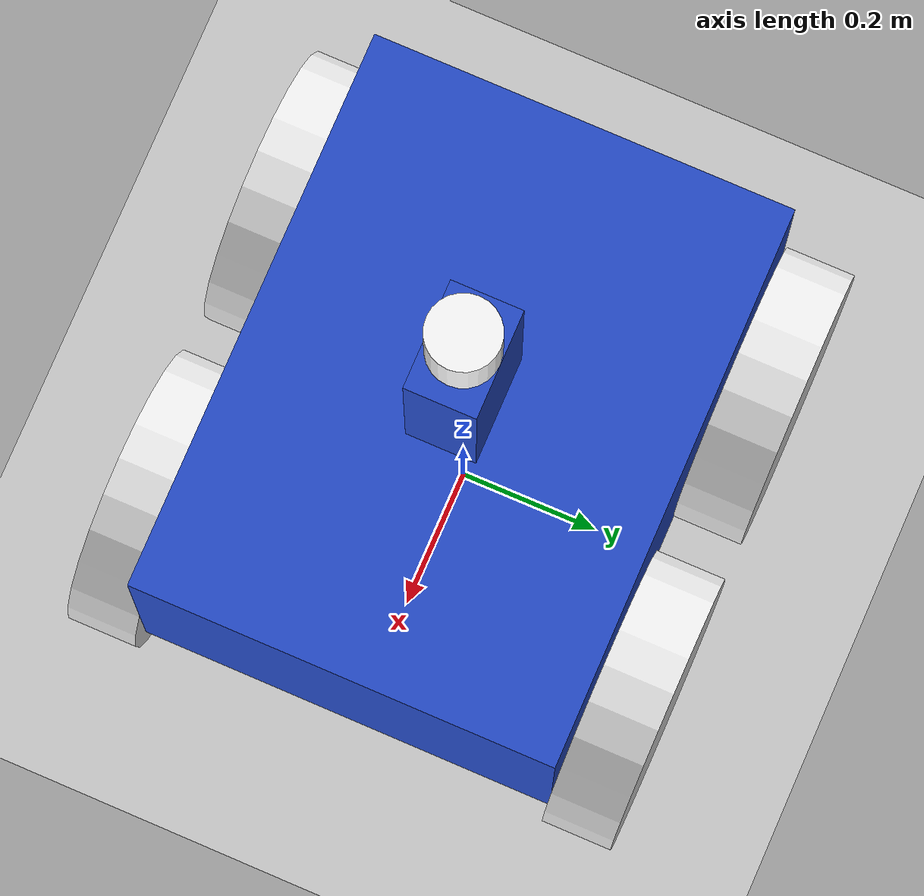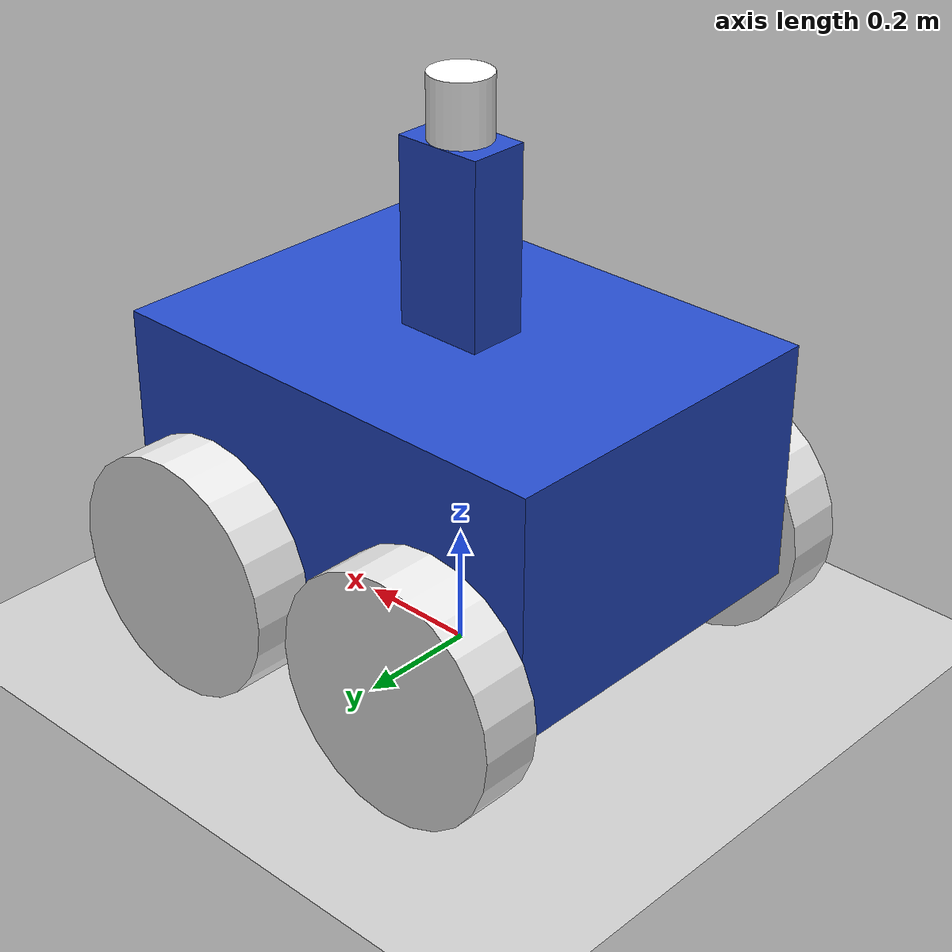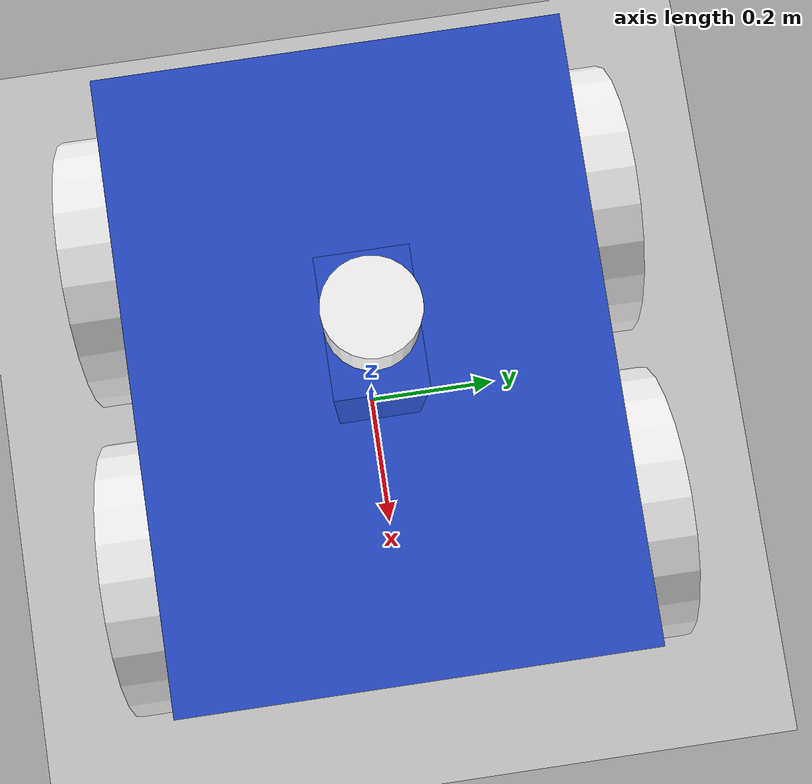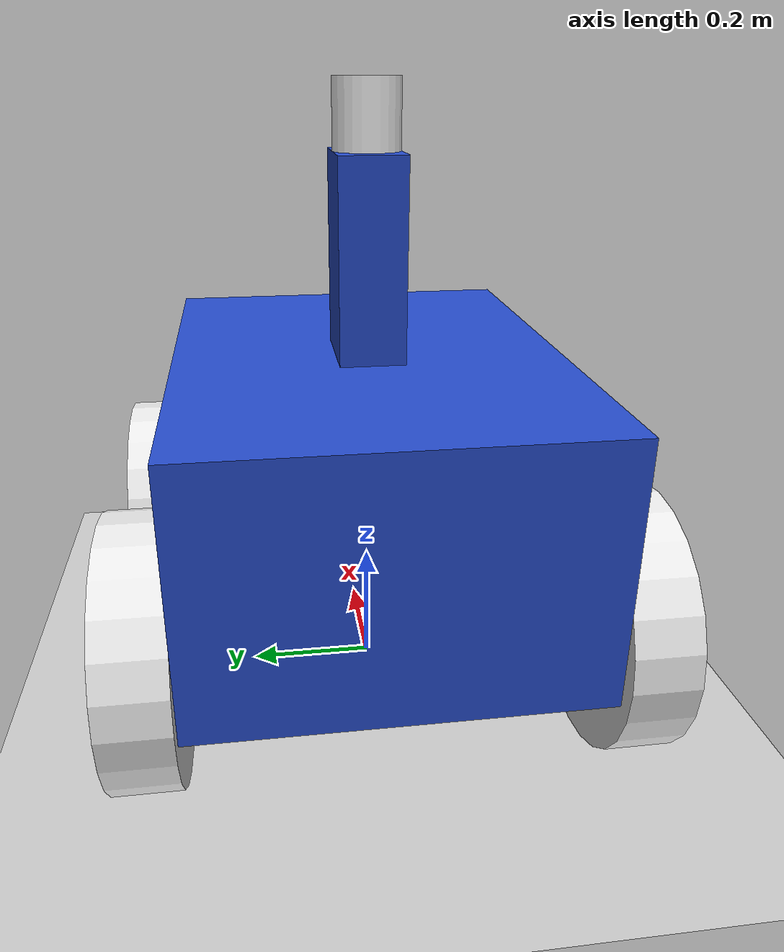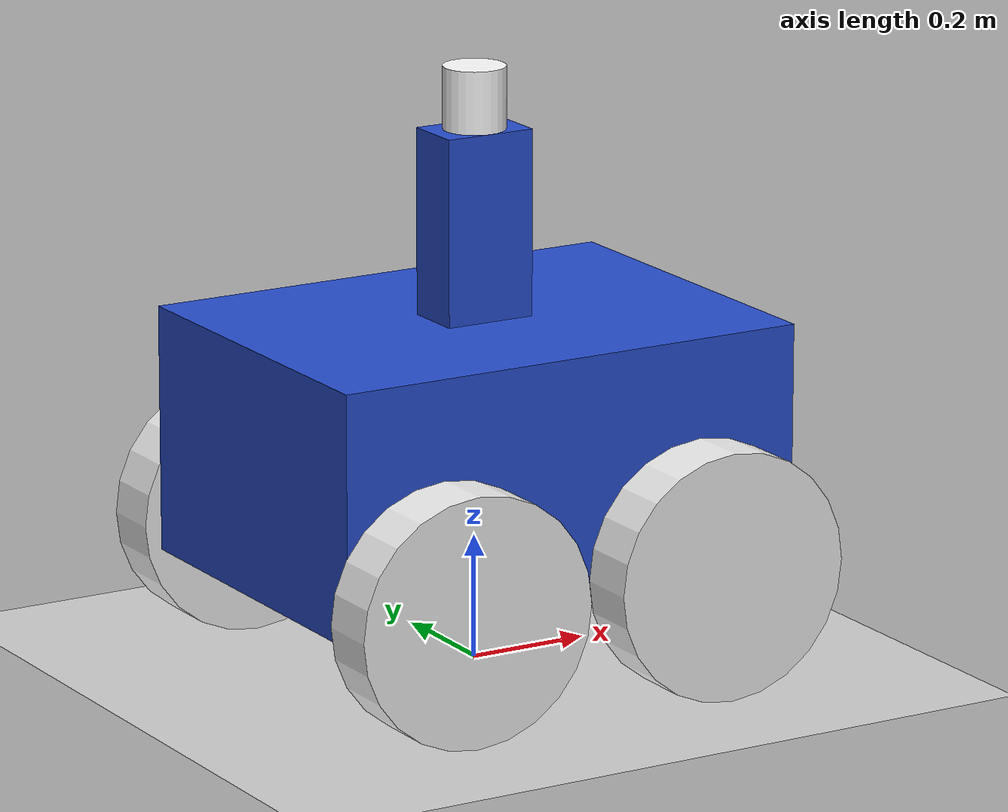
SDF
<sdf version='1.10'>
  <world name='rover'>
    <physics name='1ms' type='ode'>
      <max_step_size>0.001</max_step_size>
      <real_time_factor>1</real_time_factor>
      <real_time_update_rate>1000</real_time_update_rate>
      <solver>
        <type>quickstep</type>
        <iters>100</iters>
      </solver>
    </physics>
    <plugin name='gz::sim::systems::Physics' filename='gz-sim-physics-system'/>
    <plugin name='gz::sim::systems::UserCommands' filename='gz-sim-user-commands-system'/>
    <plugin name='gz::sim::systems::SceneBroadcaster' filename='gz-sim-scene-broadcaster-system'/>
    <plugin name='gz::sim::systems::Contact' filename='gz-sim-contact-system'/>
    <gravity>0 0 -9.8000000000000007</gravity>
    <magnetic_field>5.5644999999999998e-06 2.2875799999999999e-05 -4.2388400000000002e-05</magnetic_field>
    <atmosphere type='adiabatic'/>
    <scene>
      <ambient>0.400000006 0.400000006 0.400000006 1</ambient>
      <background>0.699999988 0.699999988 0.699999988 1</background>
      <shadows>true</shadows>
    </scene>
    <model name='ground_plane'>
      <static>true</static>
      <link name='link'>
        <collision name='collision'>
          <geometry>
            <plane>
              <normal>0 0 1</normal>
              <size>100 100</size>
            </plane>
          </geometry>
          <surface>
            <friction>
              <ode>
                <mu>1.0</mu>  <!-- Forward friction -->
                <mu2>1.0</mu2>  <!-- Lateral friction -->
              </ode>
            </friction>
            <bounce/>
            <contact/>
          </surface>
        </collision>
        <visual name='visual'>
          <geometry>
            <plane>
              <normal>0 0 1</normal>
              <size>100 100</size>
            </plane>
          </geometry>
          <material>
            <ambient>0.800000012 0.800000012 0.800000012 1</ambient>
            <diffuse>0.800000012 0.800000012 0.800000012 1</diffuse>
            <specular>0.800000012 0.800000012 0.800000012 1</specular>
          </material>
        </visual>
        <pose>0 0 0 0 0 0</pose>
        <enable_wind>false</enable_wind>
      </link>
      <pose>0 0 0 0 0 0</pose>
      <self_collide>false</self_collide>
    </model>
    <light name='sun' type='directional'>
      <pose>0 0 10 0 0 0</pose>
      <cast_shadows>true</cast_shadows>
      <intensity>1</intensity>
      <direction>-0.5 0.10000000000000001 -0.90000000000000002</direction>
      <diffuse>0.800000012 0.800000012 0.800000012 1</diffuse>
      <specular>0.200000003 0.200000003 0.200000003 1</specular>
      <attenuation>
        <range>1000</range>
        <linear>0.01</linear>
        <constant>0.90000000000000002</constant>
        <quadratic>0.001</quadratic>
      </attenuation>
      <spot>
        <inner_angle>0</inner_angle>
        <outer_angle>0</outer_angle>
        <falloff>0</falloff>
      </spot>
    </light>

    <model name='rover'>
      <link name='base_link'>
        <inertial>
          <pose>0 0 0.42569558101472998 0 0 0</pose>
          <mass>6.1099999999999994</mass>
          <inertia>
            <ixx>0.47053996044735391</ixx>
            <ixy>0</ixy>
            <ixz>0</ixz>
            <iyy>0.35283162711402061</iyy>
            <iyz>0</iyz>
            <izz>0.41950999999999999</izz>
          </inertia>
        </inertial>
        <collision name='base_link_collision'>
          <pose>0 0 0.35999999999999999 0 0 0</pose>
          <geometry>
            <box>
              <size>0.80000000000000004 0.59999999999999998 0.40000000000000002</size>
            </box>
          </geometry>
          <surface>
            <contact>
              <ode/>
            </contact>
            <friction>
              <ode>
                <mu>0.20000000000000001</mu>
                <mu2>0.20000000000000001</mu2>
              </ode>
            </friction>
          </surface>
        </collision>
        <collision name='base_link_fixed_joint_lump__stand_link_collision_1'>
          <pose>0 0 0.71000000000000008 0 0 0</pose>
          <geometry>
            <box>
              <size>0.14999999999999999 0.10000000000000001 0.29999999999999999</size>
            </box>
          </geometry>
          <surface>
            <contact>
              <ode/>
            </contact>
            <friction>
              <ode>
                <mu>0.20000000000000001</mu>
                <mu2>0.20000000000000001</mu2>
              </ode>
            </friction>
          </surface>
        </collision>
        <collision name='base_link_fixed_joint_lump__lidar_link_collision_2'>
          <pose>0 0 0.91000000000000014 0 0 0</pose>
          <geometry>
            <cylinder>
              <length>0.10000000000000001</length>
              <radius>0.050000000000000003</radius>
            </cylinder>
          </geometry>
          <surface>
            <contact>
              <ode/>
            </contact>
            <friction>
              <ode/>
            </friction>
          </surface>
        </collision>
        <visual name='base_link_visual'>
          <pose>0 0 0.35999999999999999 0 0 0</pose>
          <geometry>
            <box>
              <size>0.80000000000000004 0.59999999999999998 0.40000000000000002</size>
            </box>
          </geometry>
          <material>
            <script>
              <name>Gazebo/Blue</name>
              <uri>file://media/materials/scripts/gazebo.material</uri>
            </script>
            <diffuse>1 0.949999988 0.949999988 1</diffuse>
            <ambient>1 0.949999988 0.949999988 1</ambient>
          </material>
        </visual>
        <visual name='base_link_fixed_joint_lump__stand_link_visual_1'>
          <pose>0 0 0.71000000000000008 0 0 0</pose>
          <geometry>
            <box>
              <size>0.14999999999999999 0.10000000000000001 0.29999999999999999</size>
            </box>
          </geometry>
          <material>
            <script>
              <name>Gazebo/Blue</name>
              <uri>file://media/materials/scripts/gazebo.material</uri>
            </script>
            <diffuse>1 0.949999988 0.949999988 1</diffuse>
            <ambient>1 0.949999988 0.949999988 1</ambient>
          </material>
        </visual>
        <visual name='base_link_fixed_joint_lump__lidar_link_visual_2'>
          <pose>0 0 0.91000000000000014 0 0 0</pose>
          <geometry>
            <cylinder>
              <length>0.10000000000000001</length>
              <radius>0.050000000000000003</radius>
            </cylinder>
          </geometry>
          <material>
            <diffuse>1 1 1 1</diffuse>
            <ambient>1 1 1 1</ambient>
          </material>
        </visual>
        <sensor name='imu' type='imu'>
          <always_on>true</always_on>
          <update_rate>100</update_rate>
          <visualize>true</visualize>
          <topic>imu</topic>
          <pose>0 0 0 0 0 0</pose>
        </sensor>
        <sensor name='lidar' type='gpu_lidar'>
          <topic>cloud</topic>
          <update_rate>10</update_rate>
          <lidar>
            <scan>
              <horizontal>
                <samples>720</samples>
                <min_angle>-3.141592653</min_angle>
                <max_angle>3.141592653</max_angle>
                <resolution>1</resolution>
              </horizontal>
              <vertical>
                <samples>64</samples>
                <min_angle>-0.60999999999999999</min_angle>
                <max_angle>-0.001</max_angle>
              </vertical>
            </scan>
            <range>
              <min>0.29999999999999999</min>
              <max>8</max>
              <resolution>0.01</resolution>
              <noise>
                <type>gaussian</type>
                <mean>0.0</mean>
                <stddev>0.02</stddev>
              </noise>
            </range>
          </lidar>
          <always_on>true</always_on>
          <visualize>true</visualize>
          <pose>0 0 0.91000000000000003 0 0 0</pose>
          <gz_frame_id>lidar_link</gz_frame_id>
        </sensor>
      </link>
      <joint name='wheel_bl_joint' type='revolute'>
        <pose relative_to='base_link'>-0.22857142857142859 0.34999999999999998 0.20000000000000001 0 0 0</pose>
        <parent>base_link</parent>
        <child>wheel_bl_link</child>
        <axis>
          <xyz>0 1 0</xyz>
          <limit>
            <effort>2000</effort>
            <velocity>1</velocity>
            <lower>-inf</lower>
            <upper>inf</upper>
          </limit>
          <dynamics>
            <spring_reference>0</spring_reference>
            <spring_stiffness>0</spring_stiffness>
          </dynamics>
        </axis>
      </joint>
      <link name='wheel_bl_link'>
        <pose relative_to='wheel_bl_joint'>0 0 0 0 0 0</pose>
        <inertial>
          <pose>0 0 0 1.5707963267948959 0 0</pose>
          <mass>1.2</mass>
          <inertia>
            <ixx>0.012999999999999999</ixx>
            <ixy>0</ixy>
            <ixz>0</ixz>
            <iyy>0.012999999999999999</iyy>
            <iyz>0</iyz>
            <izz>0.024</izz>
          </inertia>
        </inertial>
        <collision name='wheel_bl_link_collision'>
          <pose>0 0 0 1.5707963267948959 0 0</pose>
          <geometry>
            <cylinder>
              <length>0.10000000000000001</length>
              <radius>0.20000000000000001</radius>
            </cylinder>
          </geometry>
          <surface>
            <contact>
              <ode/>
            </contact>
            <friction>
              <ode>
                <mu>1</mu>
                <mu2>0.20000000000000001</mu2>
                <fdir1>1 0 0</fdir1>
              </ode>
            </friction>
          </surface>
        </collision>
        <visual name='wheel_bl_link_visual'>
          <pose>0 0 0 1.5707963267948959 0 0</pose>
          <geometry>
            <cylinder>
              <length>0.10000000000000001</length>
              <radius>0.20000000000000001</radius>
            </cylinder>
          </geometry>
          <material>
            <script>
              <name>Gazebo/White</name>
              <uri>file://media/materials/scripts/gazebo.material</uri>
            </script>
            <diffuse>0.625 0.625 0.625 1</diffuse>
            <ambient>0.625 0.625 0.625 1</ambient>
          </material>
        </visual>
      </link>
      <joint name='wheel_br_joint' type='revolute'>
        <pose relative_to='base_link'>-0.22857142857142859 -0.34999999999999998 0.20000000000000001 0 0 0</pose>
        <parent>base_link</parent>
        <child>wheel_br_link</child>
        <axis>
          <xyz>0 1 0</xyz>
          <limit>
            <effort>2000</effort>
            <velocity>1</velocity>
            <lower>-inf</lower>
            <upper>inf</upper>
          </limit>
          <dynamics>
            <spring_reference>0</spring_reference>
            <spring_stiffness>0</spring_stiffness>
          </dynamics>
        </axis>
      </joint>
      <link name='wheel_br_link'>
        <pose relative_to='wheel_br_joint'>0 0 0 0 0 0</pose>
        <inertial>
          <pose>0 0 0 1.5707963267948959 0 0</pose>
          <mass>1.2</mass>
          <inertia>
            <ixx>0.012999999999999999</ixx>
            <ixy>0</ixy>
            <ixz>0</ixz>
            <iyy>0.012999999999999999</iyy>
            <iyz>0</iyz>
            <izz>0.024</izz>
          </inertia>
        </inertial>
        <collision name='wheel_br_link_collision'>
          <pose>0 0 0 1.5707963267948959 0 0</pose>
          <geometry>
            <cylinder>
              <length>0.10000000000000001</length>
              <radius>0.20000000000000001</radius>
            </cylinder>
          </geometry>
          <surface>
            <contact>
              <ode/>
            </contact>
            <friction>
              <ode>
                <mu>1</mu>
                <mu2>0.20000000000000001</mu2>
                <fdir1>1 0 0</fdir1>
              </ode>
            </friction>
          </surface>
        </collision>
        <visual name='wheel_br_link_visual'>
          <pose>0 0 0 1.5707963267948959 0 0</pose>
          <geometry>
            <cylinder>
              <length>0.10000000000000001</length>
              <radius>0.20000000000000001</radius>
            </cylinder>
          </geometry>
          <material>
            <script>
              <name>Gazebo/White</name>
              <uri>file://media/materials/scripts/gazebo.material</uri>
            </script>
            <diffuse>0.625 0.625 0.625 1</diffuse>
            <ambient>0.625 0.625 0.625 1</ambient>
          </material>
        </visual>
      </link>
      <joint name='wheel_fl_joint' type='revolute'>
        <pose relative_to='base_link'>0.22857142857142859 0.34999999999999998 0.20000000000000001 0 0 0</pose>
        <parent>base_link</parent>
        <child>wheel_fl_link</child>
        <axis>
          <xyz>0 1 0</xyz>
          <limit>
            <effort>2000</effort>
            <velocity>1</velocity>
            <lower>-inf</lower>
            <upper>inf</upper>
          </limit>
          <dynamics>
            <spring_reference>0</spring_reference>
            <spring_stiffness>0</spring_stiffness>
          </dynamics>
        </axis>
      </joint>
      <link name='wheel_fl_link'>
        <pose relative_to='wheel_fl_joint'>0 0 0 0 0 0</pose>
        <inertial>
          <pose>0 0 0 1.5707963267948959 0 0</pose>
          <mass>1.2</mass>
          <inertia>
            <ixx>0.012999999999999999</ixx>
            <ixy>0</ixy>
            <ixz>0</ixz>
            <iyy>0.012999999999999999</iyy>
            <iyz>0</iyz>
            <izz>0.024</izz>
          </inertia>
        </inertial>
        <collision name='wheel_fl_link_collision'>
          <pose>0 0 0 1.5707963267948959 0 0</pose>
          <geometry>
            <cylinder>
              <length>0.10000000000000001</length>
              <radius>0.20000000000000001</radius>
            </cylinder>
          </geometry>
          <surface>
            <contact>
              <ode/>
            </contact>
            <friction>
              <ode>
                <mu>1</mu>
                <mu2>0.20000000000000001</mu2>
                <fdir1>1 0 0</fdir1>
              </ode>
            </friction>
          </surface>
        </collision>
        <visual name='wheel_fl_link_visual'>
          <pose>0 0 0 1.5707963267948959 0 0</pose>
          <geometry>
            <cylinder>
              <length>0.10000000000000001</length>
              <radius>0.20000000000000001</radius>
            </cylinder>
          </geometry>
          <material>
            <script>
              <name>Gazebo/White</name>
              <uri>file://media/materials/scripts/gazebo.material</uri>
            </script>
            <diffuse>0.625 0.625 0.625 1</diffuse>
            <ambient>0.625 0.625 0.625 1</ambient>
          </material>
        </visual>
      </link>
      <joint name='wheel_fr_joint' type='revolute'>
        <pose relative_to='base_link'>0.22857142857142859 -0.34999999999999998 0.20000000000000001 0 0 0</pose>
        <parent>base_link</parent>
        <child>wheel_fr_link</child>
        <axis>
          <xyz>0 1 0</xyz>
          <limit>
            <effort>2000</effort>
            <velocity>1</velocity>
            <lower>-inf</lower>
            <upper>inf</upper>
          </limit>
          <dynamics>
            <spring_reference>0</spring_reference>
            <spring_stiffness>0</spring_stiffness>
          </dynamics>
        </axis>
      </joint>
      <link name='wheel_fr_link'>
        <pose relative_to='wheel_fr_joint'>0 0 0 0 0 0</pose>
        <inertial>
          <pose>0 0 0 1.5707963267948959 0 0</pose>
          <mass>1.2</mass>
          <inertia>
            <ixx>0.012999999999999999</ixx>
            <ixy>0</ixy>
            <ixz>0</ixz>
            <iyy>0.012999999999999999</iyy>
            <iyz>0</iyz>
            <izz>0.024</izz>
          </inertia>
        </inertial>
        <collision name='wheel_fr_link_collision'>
          <pose>0 0 0 1.5707963267948959 0 0</pose>
          <geometry>
            <cylinder>
              <length>0.10000000000000001</length>
              <radius>0.20000000000000001</radius>
            </cylinder>
          </geometry>
          <surface>
            <contact>
              <ode/>
            </contact>
            <friction>
              <ode>
                <mu>1</mu>
                <mu2>0.20000000000000001</mu2>
                <fdir1>1 0 0</fdir1>
              </ode>
            </friction>
          </surface>
        </collision>
        <visual name='wheel_fr_link_visual'>
          <pose>0 0 0 1.5707963267948959 0 0</pose>
          <geometry>
            <cylinder>
              <length>0.10000000000000001</length>
              <radius>0.20000000000000001</radius>
            </cylinder>
          </geometry>
          <material>
            <script>
              <name>Gazebo/White</name>
              <uri>file://media/materials/scripts/gazebo.material</uri>
            </script>
            <diffuse>0.625 0.625 0.625 1</diffuse>
            <ambient>0.625 0.625 0.625 1</ambient>
          </material>
        </visual>
      </link>
      <plugin name='gz::sim::systems::Imu' filename='gz-sim-imu-system'/>
      <plugin name='gz::sim::systems::Sensors' filename='gz-sim-sensors-system'>
        <render_engine>ogre2</render_engine>
      </plugin>
      <plugin name='gz::sim::systems::DiffDrive' filename='gz-sim-diff-drive-system'>
        <num_wheel_pairs>2</num_wheel_pairs>
        <left_joint>wheel_fl_joint</left_joint>
        <left_joint>wheel_bl_joint</left_joint>
        <right_joint>wheel_fr_joint</right_joint>
        <right_joint>wheel_br_joint</right_joint>
        <wheel_separation>0.7</wheel_separation>
        <wheel_radius>0.2</wheel_radius>
        <wheelbase>0.57142857</wheelbase>
        <max_linear_acceleration>10</max_linear_acceleration>
        <max_velocity>10.0</max_velocity>
        <max_angular_velocity>10.0</max_angular_velocity>
        <update_rate>100</update_rate>
        <odom_publish_frequency>100</odom_publish_frequency>
        <topic>cmd_vel</topic>
        <tf_topic>/tf</tf_topic>
        <odom_topic>odom</odom_topic>
      </plugin>
      <plugin name='gz::sim::systems::JointStatePublisher' filename='gz-sim-joint-state-publisher-system'>
        <topic>joint_states</topic>
        <joint_name>wheel_fl_joint</joint_name>
        <joint_name>wheel_bl_joint</joint_name>
        <joint_name>wheel_fr_joint</joint_name>
        <joint_name>wheel_br_joint</joint_name>
      </plugin>
      <frame name='imu_joint' attached_to='base_link'>
        <pose>0 0 0 0 0 0</pose>
      </frame>
      <frame name='imu_link' attached_to='imu_joint'>
        <pose>0 0 0 0 0 0</pose>
      </frame>
      <frame name='lidar_joint' attached_to='stand_link'>
        <pose>0 0 0.20000000000000001 0 0 0</pose>
      </frame>
      <frame name='lidar_link' attached_to='lidar_joint'>
        <pose>0 0 0 0 0 0</pose>
      </frame>
      <frame name='stand_joint' attached_to='base_link'>
        <pose>0 0 0.71000000000000008 0 0 0</pose>
      </frame>
      <frame name='stand_link' attached_to='stand_joint'>
        <pose>0 0 0 0 0 0</pose>
      </frame>
    </model>

  </world>
</sdf>
